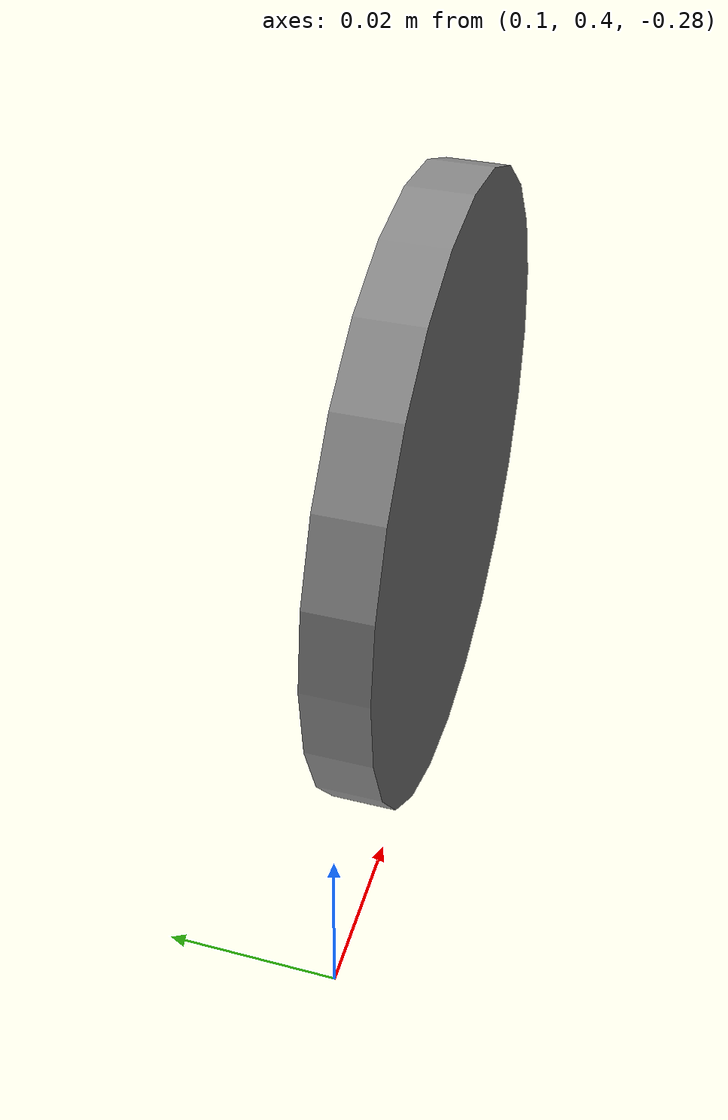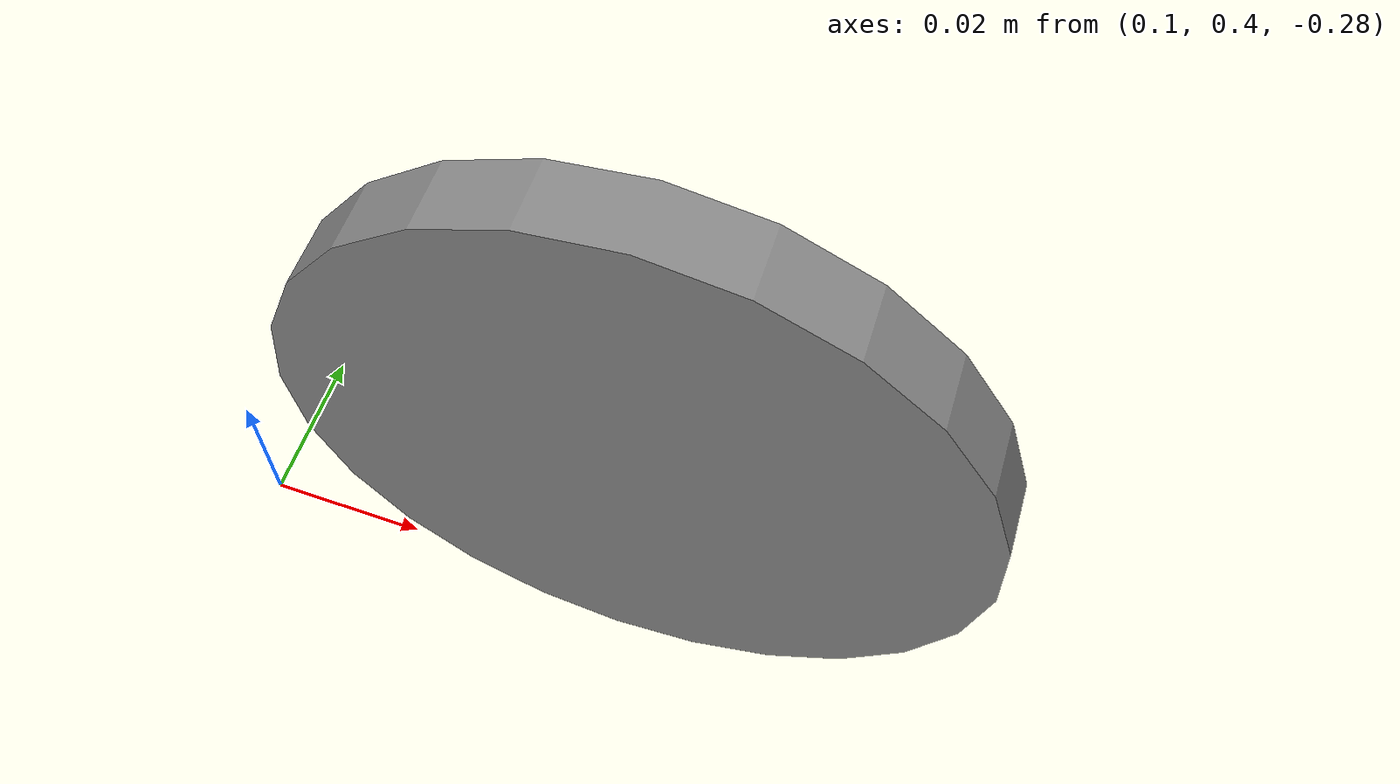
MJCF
<mujoco model="original-98">
  <default>
    <default class="visual">
      <geom group="2" type="mesh" contype="0" conaffinity="0"/>
    </default>
    <default class="collision">
      <geom group="3" type="mesh"/>
    </default>
  </default>
  <asset>
    <material name="material_0_0" specular="0.06666666666666667" shininess="0.03" rgba="0.5294117647058824 0.5294117647058824 0.5294117647058824 1"/>
    <mesh file="original-98.obj"/>
  </asset>
  <worldbody>
    <body name="original-98">
      <geom material="material_0_0" mesh="original-98" class="visual"/>
      <geom mesh="original-98" class="collision"/>
    </body>
  </worldbody>
</mujoco>
